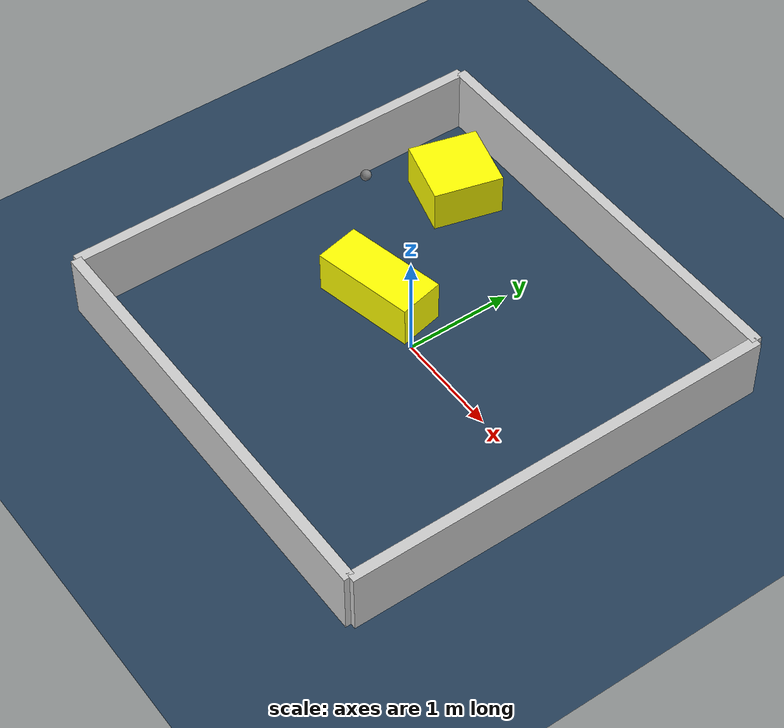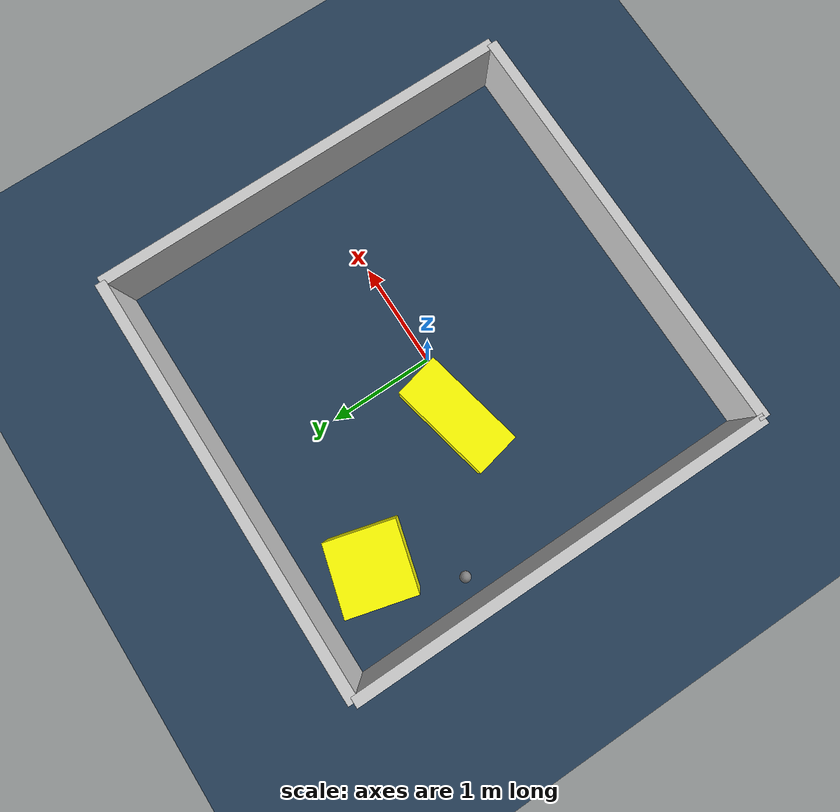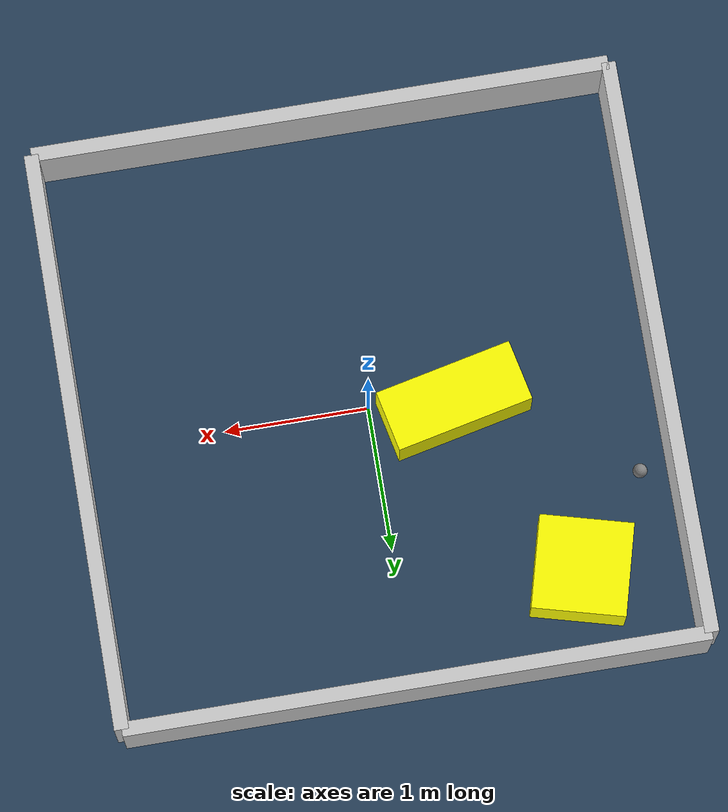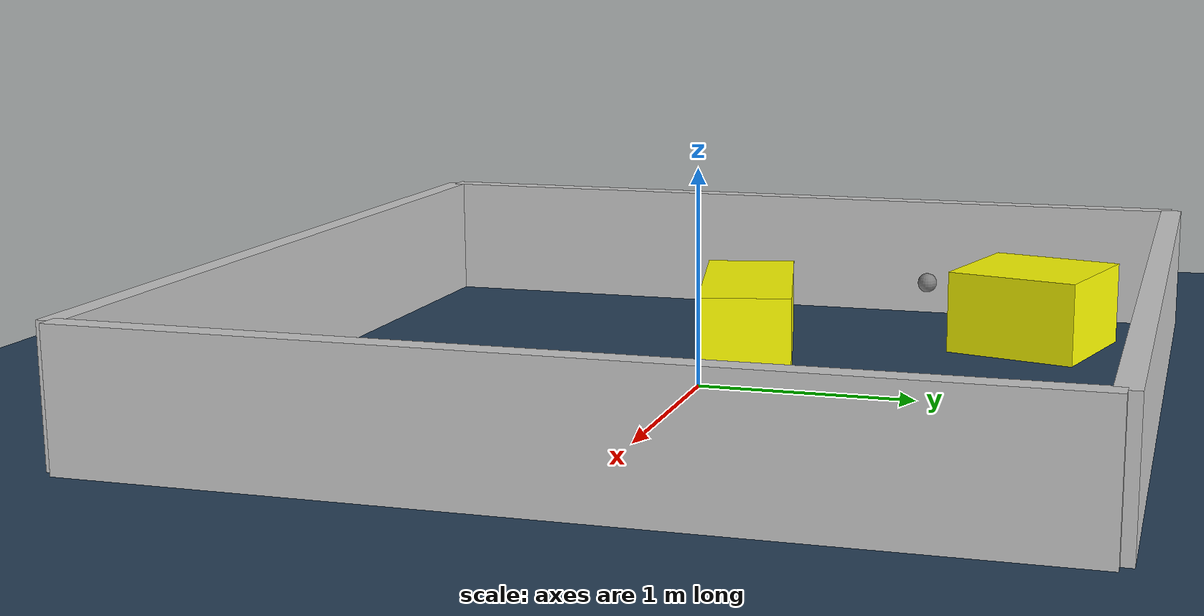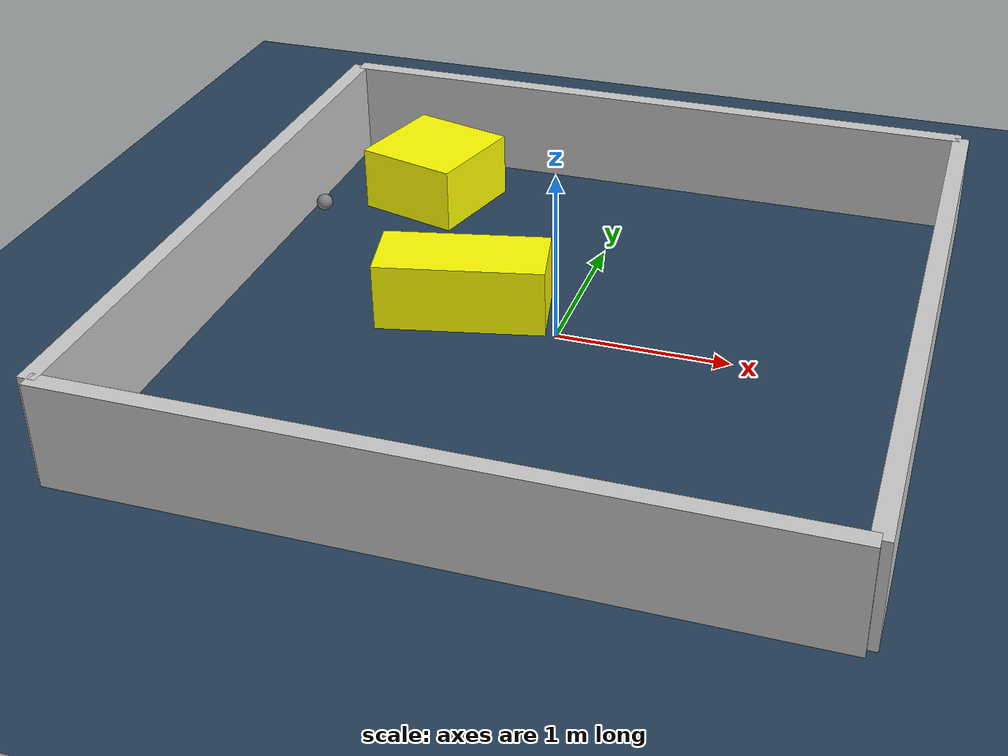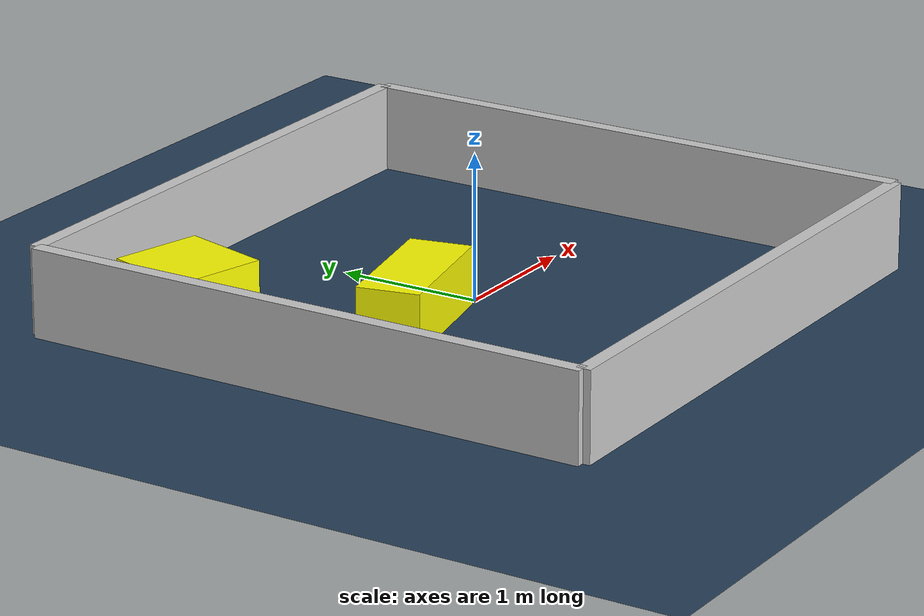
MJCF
<?xml version="1.0" ?>
<mujoco model="generated_environment">
  <option timestep="0.01" integrator="RK4" cone="elliptic"/>
  <default>
    <geom density="1"/>
  </default>
  <asset>
    <texture builtin="gradient" height="3072" rgb1="0.3 0.5 0.7" rgb2="0 0 0" type="skybox" width="512"/>
    <texture builtin="checker" height="300" mark="edge" markrgb="0.8 0.8 0.8" name="groundplane" rgb1="0.2 0.3 0.4" rgb2="0.1 0.2 0.3" type="2d" width="300"/>
    <material name="groundplane" reflectance="0.2" texrepeat="5 5" texture="groundplane" texuniform="true"/>
    <material name="robot" rgba="0.0 1.0 0.0 1"/>
  </asset>
  <worldbody>
    <light dir="0 0 -1" directional="true" pos="0 0 1.5"/>
    <geom condim="4" friction="1.0 0.005 0.001" material="groundplane" name="floor" size="0 0 0.05" type="plane"/>
    <body name="walls">
      <geom name="wall_1" condim="4" pos="-2.0 0.0 0.3" rgba="0.800000011920929 0.800000011920929 0.800000011920929 1.0" size="0.05 2.0 0.3" type="box"/>
      <geom name="wall_2" condim="4" pos="2.0 0.0 0.3" rgba="0.800000011920929 0.800000011920929 0.800000011920929 1.0" size="0.05 2.0 0.3" type="box"/>
      <geom name="wall_3" condim="4" pos="0.0 -2.0 0.3" rgba="0.800000011920929 0.800000011920929 0.800000011920929 1.0" size="2.0 0.05 0.3" type="box"/>
      <geom name="wall_4" condim="4" pos="0.0 2.0 0.3" rgba="0.800000011920929 0.800000011920929 0.800000011920929 1.0" size="2.0 0.05 0.3" type="box"/>
    </body>
    <body name="robot">
      <joint name="joint_x" type="slide" pos="0 0 0" axis="1 0 0"/>
      <joint name="joint_y" type="slide" pos="0 0 0" axis="0 1 0"/>
      <geom name="robot" type="sphere" pos="-1.7502939973682765 0.7696458562932564 0.2" size="0.05" mass="5." friction="1.0 0.005 0.0001" condim="4"/>
      <site name="sensor_ball"/>
    </body>
    <body name="obstacle_1_movable">
      <geom name="obstacle_1_movable" condim="4" pos="-0.5788688426771598 0.08472642832530508 0.2" euler="0 0 102.25448532893427" friction="1.0 0.005 0.001" rgba="1 1 0 1" size="0.21396974356314977 0.4869056550767563 0.2" type="box" mass="0.1"/>
      <joint type="free"/>
    </body>
    <body name="obstacle_2_movable">
      <geom name="obstacle_2_movable" condim="4" pos="-1.2398851005946552 1.380062814301835 0.2" euler="0 0 165.053763464531" friction="1.0 0.005 0.001" rgba="1 1 0 1" size="0.32249854354750146 0.32240383475006296 0.2" type="box" mass="0.1"/>
      <joint type="free"/>
    </body>
  </worldbody>
  <actuator>
    <motor name="actuator_x" joint="joint_x" gear="1" ctrlrange="-1 1"/>
    <motor name="actuator_y" joint="joint_y" gear="1" ctrlrange="-1 1"/>
  </actuator>
</mujoco>
